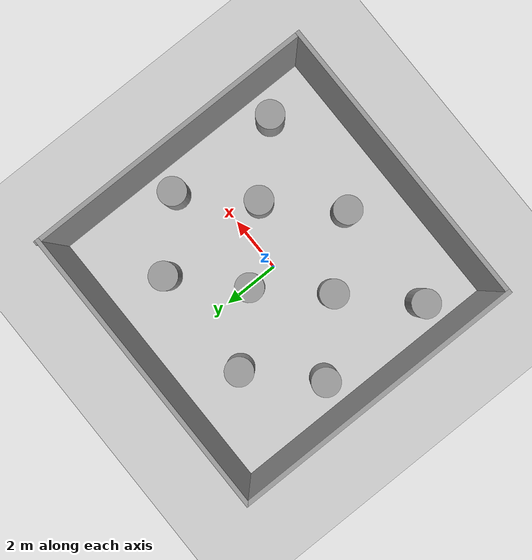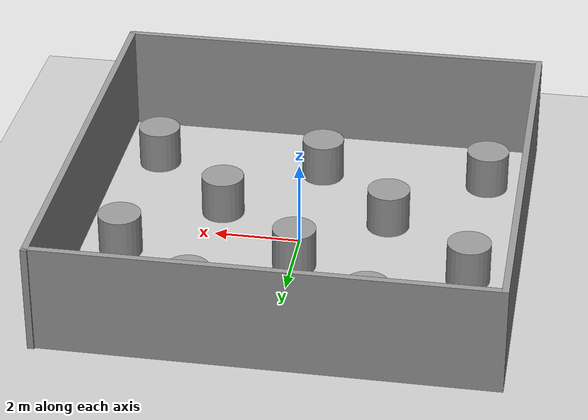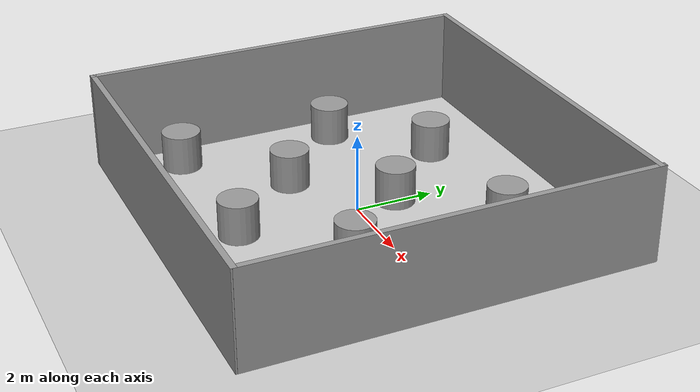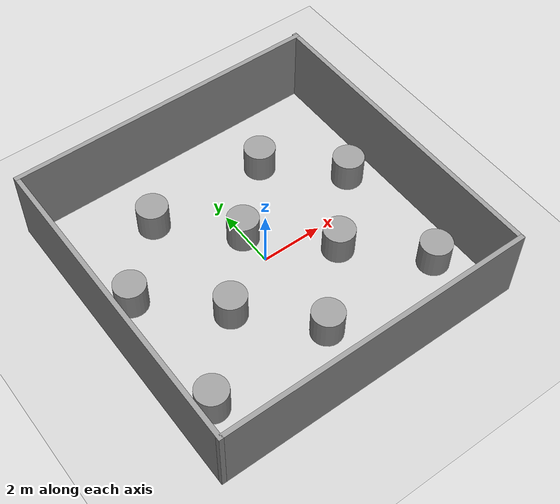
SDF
<sdf version="1.6">
 <world name="default">
  <light name="sun" type="directional">
   <pose>0 0 10 0 -0 0</pose>
   <diffuse>0.8 0.8 0.8 1</diffuse>
   <specular>0.2 0.2 0.2 1</specular>
   <attenuation>
    <range>1000</range>
    <constant>0.9</constant>
    <linear>0.01</linear>
    <quadratic>0.001</quadratic>
   </attenuation>
   <direction>-0.5 0.1 -0.9</direction>
  </light>
  <model name="ground_plane">
   <static>1</static>
   <link name="link">
    <collision name="collision">
     <geometry><plane><normal>0 0 1</normal><size>100 100</size></plane></geometry>
     <surface>
      <contact><collide_bitmask>65535</collide_bitmask></contact>
      <friction><ode><mu>100</mu><mu2>50</mu2></ode></friction>
     </surface>
    </collision>
    <visual name="visual">
     <cast_shadows>0</cast_shadows>
     <geometry><plane><normal>0 0 1</normal><size>100 100</size></plane></geometry>
     <material>
      <script><uri>file://media/materials/scripts/gazebo.material</uri><name>Gazebo/Grey</name></script>
     </material>
    </visual>
   </link>
  </model>
  <gravity>0 0 -9.8</gravity>
  <magnetic_field>6e-06 2.3e-05 -4.2e-05</magnetic_field>
  <atmosphere type="adiabatic"/>
  <physics name="default_physics" default="0" type="ode">
   <max_step_size>0.001</max_step_size>
   <real_time_factor>1</real_time_factor>
   <real_time_update_rate>1000</real_time_update_rate>
  </physics>
  <scene><ambient>0.4 0.4 0.4 1</ambient><background>0.7 0.7 0.7 1</background><shadows>1</shadows></scene>
  <spherical_coordinates>
   <surface_model>EARTH_WGS84</surface_model>
   <latitude_deg>0</latitude_deg>
   <longitude_deg>0</longitude_deg>
   <elevation>0</elevation>
   <heading_deg>0</heading_deg>
  </spherical_coordinates>
  <model name="wall10x10">
   <pose>-0.027896 0.06256 0 0 -0 0</pose>
   <link name="Wall_0">
    <collision name="Wall_0_Collision">
     <geometry><box><size>10.25 0.15 2.5</size></box></geometry>
     <pose>0 0 1.25 0 -0 0</pose>
    </collision>
    <visual name="Wall_0_Visual">
     <pose>0 0 1.25 0 -0 0</pose>
     <geometry><box><size>10.25 0.15 2.5</size></box></geometry>
     <material>
      <script><uri>file://media/materials/scripts/gazebo.material</uri><name>Gazebo/Grey</name></script>
      <ambient>1 1 1 1</ambient>
     </material>
     <meta><layer>0</layer></meta>
    </visual>
    <pose>-0.001686 -5.07194 0 0 -0 3.14159</pose>
   </link>
   <link name="Wall_2">
    <collision name="Wall_2_Collision">
     <geometry><box><size>10.25 0.15 2.5</size></box></geometry>
     <pose>0 0 1.25 0 -0 0</pose>
    </collision>
    <visual name="Wall_2_Visual">
     <pose>0 0 1.25 0 -0 0</pose>
     <geometry><box><size>10.25 0.15 2.5</size></box></geometry>
     <material>
      <script><uri>file://media/materials/scripts/gazebo.material</uri><name>Gazebo/Grey</name></script>
      <ambient>1 1 1 1</ambient>
     </material>
     <meta><layer>0</layer></meta>
    </visual>
    <pose>-5.05169 -0.021944 0 0 -0 1.5708</pose>
   </link>
   <link name="Wall_4">
    <collision name="Wall_4_Collision">
     <geometry><box><size>10.25 0.15 2.5</size></box></geometry>
     <pose>0 0 1.25 0 -0 0</pose>
    </collision>
    <visual name="Wall_4_Visual">
     <pose>0 0 1.25 0 -0 0</pose>
     <geometry><box><size>10.25 0.15 2.5</size></box></geometry>
     <material>
      <script><uri>file://media/materials/scripts/gazebo.material</uri><name>Gazebo/Grey</name></script>
      <ambient>1 1 1 1</ambient>
     </material>
     <meta><layer>0</layer></meta>
    </visual>
    <pose>-0.001686 5.02806 0 0 -0 0</pose>
   </link>
   <link name="Wall_7">
    <collision name="Wall_7_Collision">
     <geometry><box><size>10.25 0.15 2.5</size></box></geometry>
     <pose>0 0 1.25 0 -0 0</pose>
    </collision>
    <visual name="Wall_7_Visual">
     <pose>0 0 1.25 0 -0 0</pose>
     <geometry><box><size>10.25 0.15 2.5</size></box></geometry>
     <material>
      <script><uri>file://media/materials/scripts/gazebo.material</uri><name>Gazebo/Grey</name></script>
      <ambient>1 1 1 1</ambient>
     </material>
     <meta><layer>0</layer></meta>
    </visual>
    <pose>5.05169 0.021944 0 0 0 -1.5708</pose>
   </link>
   <static>1</static>
  </model>
  <model name="unit_cylinder">
   <pose>-1.97456 3.03062 0.499996 3e-06 3e-06 0</pose>
   <link name="link">
    <inertial>
     <mass>1</mass>
     <inertia><ixx>0.145833</ixx><ixy>0</ixy><ixz>0</ixz><iyy>0.145833</iyy><iyz>0</iyz><izz>0.125</izz></inertia>
    </inertial>
    <collision name="collision">
     <geometry><cylinder><radius>0.5</radius><length>1</length></cylinder></geometry>
    </collision>
    <visual name="visual">
     <geometry><cylinder><radius>0.5</radius><length>1</length></cylinder></geometry>
     <material>
      <script><name>Gazebo/Grey</name><uri>file://media/materials/scripts/gazebo.material</uri></script>
     </material>
    </visual>
   </link>
  </model>
  <model name="unit_cylinder_2">
   <pose>2.01567 3.01322 0.499998 3e-06 4e-06 -0</pose>
   <link name="link">
    <inertial>
     <mass>1</mass>
     <inertia><ixx>0.145833</ixx><ixy>0</ixy><ixz>0</ixz><iyy>0.145833</iyy><iyz>0</iyz><izz>0.125</izz></inertia>
    </inertial>
    <collision name="collision">
     <geometry><cylinder><radius>0.5</radius><length>1</length></cylinder></geometry>
    </collision>
    <visual name="visual">
     <geometry><cylinder><radius>0.5</radius><length>1</length></cylinder></geometry>
     <material>
      <script><name>Gazebo/Grey</name><uri>file://media/materials/scripts/gazebo.material</uri></script>
     </material>
    </visual>
   </link>
  </model>
  <model name="unit_cylinder_3">
   <pose>4.00276 1.05299 0.499996 4e-06 3e-06 -0</pose>
   <link name="link">
    <inertial>
     <mass>1</mass>
     <inertia><ixx>0.145833</ixx><ixy>0</ixy><ixz>0</ixz><iyy>0.145833</iyy><iyz>0</iyz><izz>0.125</izz></inertia>
    </inertial>
    <collision name="collision">
     <geometry><cylinder><radius>0.5</radius><length>1</length></cylinder></geometry>
    </collision>
    <visual name="visual">
     <geometry><cylinder><radius>0.5</radius><length>1</length></cylinder></geometry>
     <material>
      <script><name>Gazebo/Grey</name><uri>file://media/materials/scripts/gazebo.material</uri></script>
     </material>
    </visual>
   </link>
  </model>
  <model name="unit_cylinder_5">
   <pose>-0.047593 1.05299 0.499998 3e-06 -2e-06 0</pose>
   <link name="link">
    <inertial>
     <mass>1</mass>
     <inertia><ixx>0.145833</ixx><ixy>0</ixy><ixz>0</ixz><iyy>0.145833</iyy><iyz>0</iyz><izz>0.125</izz></inertia>
    </inertial>
    <collision name="collision">
     <geometry><cylinder><radius>0.5</radius><length>1</length></cylinder></geometry>
    </collision>
    <visual name="visual">
     <geometry><cylinder><radius>0.5</radius><length>1</length></cylinder></geometry>
     <material>
      <script><name>Gazebo/Grey</name><uri>file://media/materials/scripts/gazebo.material</uri></script>
     </material>
    </visual>
   </link>
  </model>
  <model name="unit_cylinder_7">
   <pose>-4.01646 1.03265 0.499998 3e-06 -2e-06 0</pose>
   <link name="link">
    <inertial>
     <mass>1</mass>
     <inertia><ixx>0.145833</ixx><ixy>0</ixy><ixz>0</ixz><iyy>0.145833</iyy><iyz>0</iyz><izz>0.125</izz></inertia>
    </inertial>
    <collision name="collision">
     <geometry><cylinder><radius>0.5</radius><length>1</length></cylinder></geometry>
    </collision>
    <visual name="visual">
     <geometry><cylinder><radius>0.5</radius><length>1</length></cylinder></geometry>
     <material>
      <script><name>Gazebo/Grey</name><uri>file://media/materials/scripts/gazebo.material</uri></script>
     </material>
    </visual>
   </link>
  </model>
  <model name="unit_cylinder_8">
   <pose>1.9907 -0.983113 0.499998 3e-06 -2e-06 0</pose>
   <link name="link">
    <inertial>
     <mass>1</mass>
     <inertia><ixx>0.145833</ixx><ixy>0</ixy><ixz>0</ixz><iyy>0.145833</iyy><iyz>0</iyz><izz>0.125</izz></inertia>
    </inertial>
    <collision name="collision">
     <geometry><cylinder><radius>0.5</radius><length>1</length></cylinder></geometry>
    </collision>
    <visual name="visual">
     <geometry><cylinder><radius>0.5</radius><length>1</length></cylinder></geometry>
     <material>
      <script><name>Gazebo/Grey</name><uri>file://media/materials/scripts/gazebo.material</uri></script>
     </material>
    </visual>
   </link>
  </model>
  <model name="unit_cylinder_11">
   <pose>-1.94547 -0.981442 0.499998 3e-06 -2e-06 0</pose>
   <link name="link">
    <inertial>
     <mass>1</mass>
     <inertia><ixx>0.145833</ixx><ixy>0</ixy><ixz>0</ixz><iyy>0.145833</iyy><iyz>0</iyz><izz>0.125</izz></inertia>
    </inertial>
    <collision name="collision">
     <geometry><cylinder><radius>0.5</radius><length>1</length></cylinder></geometry>
    </collision>
    <visual name="visual">
     <geometry><cylinder><radius>0.5</radius><length>1</length></cylinder></geometry>
     <material>
      <script><name>Gazebo/Grey</name><uri>file://media/materials/scripts/gazebo.material</uri></script>
     </material>
    </visual>
   </link>
  </model>
  <model name="unit_cylinder_12">
   <pose>3.96205 -3.03802 0.499993 -3e-06 2e-06 0</pose>
   <link name="link">
    <inertial>
     <mass>1</mass>
     <inertia><ixx>0.145833</ixx><ixy>0</ixy><ixz>0</ixz><iyy>0.145833</iyy><iyz>0</iyz><izz>0.125</izz></inertia>
    </inertial>
    <collision name="collision">
     <geometry><cylinder><radius>0.5</radius><length>1</length></cylinder></geometry>
    </collision>
    <visual name="visual">
     <geometry><cylinder><radius>0.5</radius><length>1</length></cylinder></geometry>
     <material>
      <script><name>Gazebo/Grey</name><uri>file://media/materials/scripts/gazebo.material</uri></script>
     </material>
    </visual>
   </link>
  </model>
  <model name="unit_cylinder_14">
   <pose>-0.088279 -3.05834 0.499998 3e-06 -3e-06 0</pose>
   <link name="link">
    <inertial>
     <mass>1</mass>
     <inertia><ixx>0.145833</ixx><ixy>0</ixy><ixz>0</ixz><iyy>0.145833</iyy><iyz>0</iyz><izz>0.125</izz></inertia>
    </inertial>
    <collision name="collision">
     <geometry><cylinder><radius>0.5</radius><length>1</length></cylinder></geometry>
    </collision>
    <visual name="visual">
     <geometry><cylinder><radius>0.5</radius><length>1</length></cylinder></geometry>
     <material>
      <script><name>Gazebo/Grey</name><uri>file://media/materials/scripts/gazebo.material</uri></script>
     </material>
    </visual>
   </link>
  </model>
  <model name="unit_cylinder_16">
   <pose>-4.07749 -3.11945 0.499992 -3e-06 3e-06 0</pose>
   <link name="link">
    <inertial>
     <mass>1</mass>
     <inertia><ixx>0.145833</ixx><ixy>0</ixy><ixz>0</ixz><iyy>0.145833</iyy><iyz>0</iyz><izz>0.125</izz></inertia>
    </inertial>
    <collision name="collision">
     <geometry><cylinder><radius>0.5</radius><length>1</length></cylinder></geometry>
    </collision>
    <visual name="visual">
     <geometry><cylinder><radius>0.5</radius><length>1</length></cylinder></geometry>
     <material>
      <script><name>Gazebo/Grey</name><uri>file://media/materials/scripts/gazebo.material</uri></script>
     </material>
    </visual>
   </link>
  </model>
 </world>
</sdf>
